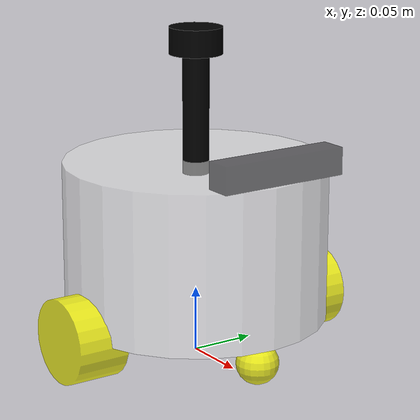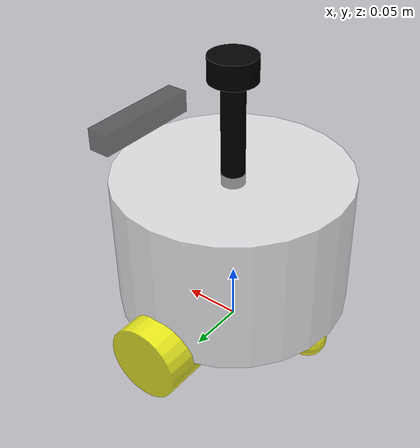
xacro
<?xml version="1.0"?>   <!-- xml格式声明-->
<!-- 注意xacro不能直接用，必须要先将xacro转换成urdf才能使用 可以使用命令xacro /home/adams/chapt6/chapt6_ws/src/fishbot_description/urdf/first_robot.xacro 来生成对应urdf文件-->
<robot xmlns:xacro="http://www.ros.org/wiki/xacro" name="fishbot">  <!--xmlns:xacro="http://www.ros.org/wiki/xacro" 是告诉大家这个urdf使用了宏语言了-->
<!-- 组装其他宏定义组件 -->
<!-- 基础部分，身体部分 base_link -->
<xacro:include filename="$(find fishbot_description)/urdf/fishbot/base.urdf.xacro"/>   <!--$(find fishbot_description)表示找到share目录下的fishbot_description(功能包的名字)目录-->
<!-- 传感器中的相机部分 -->
<xacro:include filename="$(find fishbot_description)/urdf/fishbot/sensor/camera.urdf.xacro"/>   <!--$(find fishbot_description)表示找到share目录下的fishbot_description(功能包的名字)目录-->
<!-- 传感器中的惯性测量单元部分 -->
<xacro:include filename="$(find fishbot_description)/urdf/fishbot/sensor/imu.urdf.xacro"/>   <!--$(find fishbot_description)表示找到share目录下的fishbot_description(功能包的名字)目录-->
<!-- 传感器中的雷达部分 -->
<xacro:include filename="$(find fishbot_description)/urdf/fishbot/sensor/laser.urdf.xacro"/>   <!--$(find fishbot_description)表示找到share目录下的fishbot_description(功能包的名字)目录-->
<!-- 执行器中的轮子 -->
<xacro:include filename="$(find fishbot_description)/urdf/fishbot/actuator/wheel.urdf.xacro"/>   <!--$(find fishbot_description)表示找到share目录下的fishbot_description(功能包的名字)目录-->
<!-- 执行器中的万向轮 -->
<xacro:include filename="$(find fishbot_description)/urdf/fishbot/actuator/caster.urdf.xacro"/>   <!--$(find fishbot_description)表示找到share目录下的fishbot_description(功能包的名字)目录-->

<!-- 插件 控制机器人运动插件-->
<xacro:include filename="$(find fishbot_description)/urdf/fishbot/plugins/gazebo_control_plugin.xacro"/>   <!--$(find fishbot_description)表示找到share目录下的fishbot_description(功能包的名字)目录-->
<!-- 插件 机器人的传感器插件-->
<xacro:include filename="$(find fishbot_description)/urdf/fishbot/plugins/gazebo_sensor_plugin.xacro"/>   <!--$(find fishbot_description)表示找到share目录下的fishbot_description(功能包的名字)目录-->

<!-- 调用宏 -->
<xacro:base_xacro length="0.12" radius="0.10"/>
<xacro:imu_xacro xyz="0.0 0.0 0.02"/>
<xacro:camera_xacro xyz="0.10 0.0 0.075"/>
<xacro:laser_xacro xyz="0.0 0.0 0.10"/>
<xacro:wheel_xacro wheel_name="left_wheel" xyz="0.0 0.10 -0.06"/>  <!--0.10 表示沿着Y轴偏移0.10 -0.06表示沿着Z轴向下偏移0.06-->
<xacro:wheel_xacro wheel_name="right_wheel" xyz="0.0 -0.10 -0.06"/> <!--  -0.10 表示沿着Y轴反方向偏移0.10 -0.06表示沿着Z轴向下偏移0.06-->
<!-- 万向轮部分 -->
<xacro:caster_xacro caster_name="front_caster" xyz="0.08 0.0 -0.076"/> <!--0.08 表示沿着X轴反方向偏移0.08 -0.076表示沿着Z轴向下偏移0.076-->
<xacro:caster_xacro caster_name="back_caster" xyz="-0.08 0.0 -0.076"/> <!--   -0.08 表示沿着X轴反方向偏移0.08 -0.076表示沿着Z轴向下偏移0.076-->

<!-- 使用插件 -->
<xacro:gazebo_control_plugin />
<xacro:gazebo_sensor_plugin />
</robot>

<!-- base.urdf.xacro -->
<!-- xml格式声明-->
<!-- 注意xacro不能直接用，必须要先将xacro转换成urdf才能使用 可以使用命令xacro /home/adams/chapt6/chapt6_ws/src/fishbot_description/urdf/first_robot.xacro 来生成对应urdf文件-->
<robot xmlns:xacro="http://www.ros.org/wiki/xacro">  <!--xmlns:xacro="http://www.ros.org/wiki/xacro" 是告诉大家这个urdf使用了宏语言了-->
    <!-- 引入描述质量和惯性的宏定义文件 -->
    <xacro:include filename="$(find fishbot_description)/urdf/fishbot/common_inertia.xacro"/>   <!--$(find fishbot_description)表示找到share目录下的fishbot_description(功能包的名字)目录-->

    <xacro:macro name="base_xacro" params="length radius">
        <!-- 定义base_link的虚拟部件，base_link相对于地面的投影，xy相同，z是base_link几何中心到地面的距离 -->
        <link name="base_footprint"/>

        <!--机器人身体部分-->
        <link name="base_link">  <!--子部件-->
            <!--  部件的外观描述 -->
            <visual>
                <!-- 沿着自己几何中心的偏移和旋转量 xyz表示偏移 rpy表示旋转(欧拉角表示)-->
                <origin xyz="0.0 0.0 0.0" rpy="0.0 0.0 0.0"/>
                <!-- 几何形状 -->
                <geometry>
                    <!-- 圆柱体 radius半径，length高度 单位是m-->
                    <cylinder radius="${radius}" length="${length}"/>
                </geometry>
                <!-- 材质颜色描述 -->
                <material name="white">
                    <!-- 颜色 红绿蓝和透明度，取值范围0.0-1.0   0.5表示半透明 -->
                    <color rgba="1.0 1.0 1.0 0.5"/>
                </material>
            </visual>
            <!-- 碰撞属性 -->
            <collision>
                <!-- 沿着自己几何中心的偏移和旋转量 xyz表示偏移 rpy表示旋转(欧拉角表示)-->
                <origin xyz="0.0 0.0 0.0" rpy="0.0 0.0 0.0"/>
                <!-- 几何形状 -->
                <geometry>
                    <!-- 圆柱体 radius半径，length高度 单位是m-->
                    <cylinder radius="${radius}" length="${length}"/>
                </geometry>
                <!-- 材质颜色描述 -->
                <material name="white">
                    <!-- 颜色 红绿蓝和透明度，取值范围0.0-1.0   0.5表示半透明 -->
                    <color rgba="1.0 1.0 1.0 0.5"/>
                </material>
            </collision>

            <!-- 设置base_link的质量和惯性 -->
            <xacro:cylinder_inertia m="1.0" r="${radius}" h="${length}"/>
        </link>

         <joint name="joint_name" type="fixed">
            <!--${length/2 + 0.032 - 0.001} 表示虚拟部件的位置，0.032表示左右轮子的半径  -->
            <origin xyz="0.0 0.0 ${length/2.0+0.032-0.001}" rpy="0.0 0.0 0.0"/>
            <parent link="base_footprint"/>
            <child link="base_link"/>
        </joint>
    </xacro:macro>

</robot>

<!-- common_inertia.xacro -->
<robot xmlns:xacro="http://ros.org/wiki/xacro">
    <!-- 定义描述各种形状部件的质量和惯性 宏定义 -->
    <xacro:macro name="box_inertia" params="m w h d">
        <inertial>
            <mass value="${m}" />
            <inertia ixx="${(m/12) * (h*h + d*d)}" ixy="0.0" ixz="0.0" iyy="${(m/12) * (w*w + d*d)}" iyz="0.0" izz="${(m/12) * (w*w + h*h)}" />
        </inertial>
    </xacro:macro>

    <xacro:macro name="cylinder_inertia" params="m r h">
        <inertial>
            <mass value="${m}" />
            <inertia ixx="${(m/12) * (3*r*r + h*h)}" ixy="0" ixz="0" iyy="${(m/12) * (3*r*r + h*h)}" iyz="0" izz="${(m/2) * (r*r)}" />
        </inertial>
    </xacro:macro>

    <xacro:macro name="sphere_inertia" params="m r">
        <inertial>
            <mass value="${m}" />
            <inertia ixx="${(2/5) * m * (r*r)}" ixy="0.0" ixz="0.0" iyy="${(2/5) * m * (r*r)}" iyz="0.0" izz="${(2/5) * m * (r*r)}" />
        </inertial>
    </xacro:macro>

</robot>

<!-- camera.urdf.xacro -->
<!-- xml格式声明-->
<!-- 注意xacro不能直接用，必须要先将xacro转换成urdf才能使用 可以使用命令xacro /home/adams/chapt6/chapt6_ws/src/fishbot_description/urdf/first_robot.xacro 来生成对应urdf文件-->
<robot xmlns:xacro="http://www.ros.org/wiki/xacro">  <!--xmlns:xacro="http://www.ros.org/wiki/xacro" 是告诉大家这个urdf使用了宏语言了-->
     <!-- 引入描述质量和惯性的宏定义文件 -->
    <xacro:include filename="$(find fishbot_description)/urdf/fishbot/common_inertia.xacro"/>   <!--$(find fishbot_description)表示找到share目录下的fishbot_description(功能包的名字)目录-->

    <xacro:macro name="camera_xacro" params="xyz">
        <link name="camera_link">  <!--子部件-->
            <!--  部件的外观描述 -->
            <visual>
                <!-- 沿着自己几何中心的偏移和旋转量 xyz表示偏移 rpy表示旋转(欧拉角表示)-->
                <origin xyz="0.0 0.0 0.0" rpy="0.0 0.0 0.0"/>
                <!-- 几何形状 -->
                <geometry>
                    <!-- 正方体 0.02表示2cm-->
                <box size="0.02 0.10 0.02"/>
                </geometry>
                <!-- 材质颜色描述 -->
                <material name="black">
                    <!-- 颜色 红绿蓝和透明度，取值范围0.0-1.0   0.5表示半透明 -->
                    <color rgba="0.0 0.0 0.0 0.5"/>
                </material>
            </visual>
            <!-- 碰撞属性 -->
            <collision>
                <!-- 沿着自己几何中心的偏移和旋转量 xyz表示偏移 rpy表示旋转(欧拉角表示)-->
                <origin xyz="0.0 0.0 0.0" rpy="0.0 0.0 0.0"/>
                <!-- 几何形状 -->
                <geometry>
                    <!-- 正方体 0.02表示2cm-->
                <box size="0.02 0.10 0.02"/>
                </geometry>
                <!-- 材质颜色描述 -->
                <material name="black">
                    <!-- 颜色 红绿蓝和透明度，取值范围0.0-1.0   0.5表示半透明 -->
                    <color rgba="0.0 0.0 0.0 0.5"/>
                </material>
            </collision>

            <!-- 设置质量和惯性 -->
            <xacro:box_inertia m="0.1" w="0.02" h="0.10" d="0.02" />
        </link>

        <!-- 机器人的关节，用于组合机器人的部件，此处将camera_link和base_link进行组合 -->
        <joint name="camera_jonit" type="fixed">  <!--fixed表示固定死的-->
            <!-- 目前的意思表示将camera_link固定在base_link上面 -->
            <parent link="base_link"/> <!--父部件-->
            <child link="camera_link"/> <!--子部件-->
            <!-- 固定的位置，偏移和旋转 -->
            <origin xyz="${xyz}" rpy="0.0 0.0 0.0"/>
        </joint>
    </xacro:macro>
</robot>

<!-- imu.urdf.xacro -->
<!-- xml格式声明-->
<!-- 传感器xacro的定义 -->
<!-- 注意xacro不能直接用，必须要先将xacro转换成urdf才能使用 可以使用命令xacro /home/adams/chapt6/chapt6_ws/src/fishbot_description/urdf/first_robot.xacro 来生成对应urdf文件-->
<robot xmlns:xacro="http://www.ros.org/wiki/xacro">  <!--xmlns:xacro="http://www.ros.org/wiki/xacro" 是告诉大家这个urdf使用了宏语言了-->
    <!-- 引入描述质量和惯性的宏定义文件 -->
    <xacro:include filename="$(find fishbot_description)/urdf/fishbot/common_inertia.xacro"/>   <!--$(find fishbot_description)表示找到share目录下的fishbot_description(功能包的名字)目录-->

    <xacro:macro name="imu_xacro" params="xyz">
        <!-- 机器人的IMU部件，惯性测量单元传感器 -->
        <link name="imu_link">  <!--子部件-->
            <!--  部件的外观描述 -->
            <visual>
                <!-- 沿着自己几何中心的偏移和旋转量 xyz表示偏移 rpy表示旋转(欧拉角表示)-->
                <origin xyz="0.0 0.0 0.0" rpy="0.0 0.0 0.0"/>
                <!-- 几何形状 -->
                <geometry>
                    <!-- 正方体 0.02表示2cm-->
                <box size="0.02 0.02 0.02"/>
                </geometry>
                <!-- 材质颜色描述 -->
                <material name="black">
                    <!-- 颜色 红绿蓝和透明度，取值范围0.0-1.0   0.5表示半透明 -->
                    <color rgba="0.0 0.0 0.0 0.5"/>
                </material>
            </visual>
            <!-- 碰撞属性 -->
            <collision>
                <!-- 沿着自己几何中心的偏移和旋转量 xyz表示偏移 rpy表示旋转(欧拉角表示)-->
                <origin xyz="0.0 0.0 0.0" rpy="0.0 0.0 0.0"/>
                <!-- 几何形状 -->
                <geometry>
                    <!-- 正方体 0.02表示2cm-->
                <box size="0.02 0.02 0.02"/>
                </geometry>
                <!-- 材质颜色描述 -->
                <material name="black">
                    <!-- 颜色 红绿蓝和透明度，取值范围0.0-1.0   0.5表示半透明 -->
                    <color rgba="0.0 0.0 0.0 0.5"/>
                </material>
            </collision>

            <!-- 设置质量和惯性 -->
            <xacro:box_inertia m="0.05" w="0.02" h="0.02" d="0.02" />
        </link>

        <!-- 机器人的关节，用于组合机器人的部件，此处将imu_link和base_link进行组合 -->
        <joint name="imu_jonit" type="fixed">  <!--fixed表示固定死的-->
            <!-- 目前的意思表示将imu_link固定在base_link上面 -->
            <parent link="base_link"/> <!--父部件-->
            <child link="imu_link"/> <!--子部件-->
            <!-- 固定的位置，偏移和旋转    0.03表示将imu_link固定在base_link几何中心向上3cm的地方-->
            <origin xyz="${xyz}" rpy="0.0 0.0 0.0"/>
        </joint>
    </xacro:macro>
</robot>

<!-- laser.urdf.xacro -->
<!-- xml格式声明-->
<!-- 注意xacro不能直接用，必须要先将xacro转换成urdf才能使用 可以使用命令xacro /home/adams/chapt6/chapt6_ws/src/fishbot_description/urdf/first_robot.xacro 来生成对应urdf文件-->
<robot xmlns:xacro="http://www.ros.org/wiki/xacro">  <!--xmlns:xacro="http://www.ros.org/wiki/xacro" 是告诉大家这个urdf使用了宏语言了-->
     <!-- 引入描述质量和惯性的宏定义文件 -->
    <xacro:include filename="$(find fishbot_description)/urdf/fishbot/common_inertia.xacro"/>   <!--$(find fishbot_description)表示找到share目录下的fishbot_description(功能包的名字)目录-->

    <xacro:macro name="laser_xacro" params="xyz">
        <gazebo reference="laser_cylinder_link">  <!--reference表示参考的部件的名称-->
            <material>Gazebo/Black</material>  <!--设置部件的材质颜色-->
        </gazebo>
        <gazebo reference="laser_link">
            <material>Gazebo/Black</material>
        </gazebo>

        <!-- 雷达支撑杆 -->
        <link name="laser_cylinder_link">  <!--子部件-->
            <!--  部件的外观描述 -->
            <visual>
                <!-- 沿着自己几何中心的偏移和旋转量 xyz表示偏移 rpy表示旋转(欧拉角表示)-->
                <origin xyz="0.0 0.0 0.0" rpy="0.0 0.0 0.0"/>
                <!-- 几何形状 -->
                <geometry>
                    <!-- 圆柱体 radius半径，length高度 单位是m-->
                    <cylinder radius="0.01" length="0.10"/>
                </geometry>
                <!-- 材质颜色描述 -->
                <material name="black">
                    <!-- 颜色 红绿蓝和透明度，取值范围0.0-1.0   1.0表示不透明 -->
                    <color rgba="0.0 0.0 0.0 1.0"/>
                </material>
            </visual>
            <!-- 碰撞属性 -->
            <collision>
                <!-- 沿着自己几何中心的偏移和旋转量 xyz表示偏移 rpy表示旋转(欧拉角表示)-->
                <origin xyz="0.0 0.0 0.0" rpy="0.0 0.0 0.0"/>
                <!-- 几何形状 -->
                <geometry>
                    <!-- 圆柱体 radius半径，length高度 单位是m-->
                    <cylinder radius="0.01" length="0.10"/>
                </geometry>
                <!-- 材质颜色描述 -->
                <material name="black">
                    <!-- 颜色 红绿蓝和透明度，取值范围0.0-1.0   1.0表示不透明 -->
                    <color rgba="0.0 0.0 0.0 1.0"/>
                </material>
            </collision>

            <!-- 设置质量和惯性 -->
            <xacro:cylinder_inertia m="0.05" r="0.01" h="0.10"/>
        </link>

        <!-- 雷达 -->
        <link name="laser_link">  <!--子部件-->
            <!--  部件的外观描述 -->
            <visual>
                <!-- 沿着自己几何中心的偏移和旋转量 xyz表示偏移 rpy表示旋转(欧拉角表示)-->
                <origin xyz="0.0 0.0 0.0" rpy="0.0 0.0 0.0"/>
                <!-- 几何形状 -->
                <geometry>
                    <!-- 圆柱体 radius半径，length高度 单位是m-->
                    <cylinder radius="0.02" length="0.02"/>
                </geometry>
                <!-- 材质颜色描述 -->
                <material name="black">
                    <!-- 颜色 红绿蓝和透明度，取值范围0.0-1.0   1.0表示不透明 -->
                    <color rgba="0.0 0.0 0.0 1.0"/>
                </material>
            </visual>
            <!-- 碰撞属性 -->
            <collision>
             <!-- 沿着自己几何中心的偏移和旋转量 xyz表示偏移 rpy表示旋转(欧拉角表示)-->
                <origin xyz="0.0 0.0 0.0" rpy="0.0 0.0 0.0"/>
                <!-- 几何形状 -->
                <geometry>
                    <!-- 圆柱体 radius半径，length高度 单位是m-->
                    <cylinder radius="0.02" length="0.02"/>
                </geometry>
                <!-- 材质颜色描述 -->
                <material name="black">
                    <!-- 颜色 红绿蓝和透明度，取值范围0.0-1.0   1.0表示不透明 -->
                    <color rgba="0.0 0.0 0.0 1.0"/>
                </material>
            </collision>

            <!-- 设置质量和惯性 -->
            <xacro:cylinder_inertia m="0.10" r="0.02" h="0.02"/>
        </link>

        <!-- 机器人的关节，用于组合机器人的部件 -->
        <joint name="laser_jonit" type="fixed">  <!--fixed表示固定死的-->
            <!-- 目前的意思表示将laser_link固定在laser_cylinder_link上面 将雷达固定到了雷达支撑杆上-->
            <parent link="laser_cylinder_link"/> <!--父部件-->
            <child link="laser_link"/> <!--子部件-->
            <!-- 固定的位置，偏移和旋转 -->
            <origin xyz="0.0 0.0 0.05" rpy="0.0 0.0 0.0"/>
        </joint>

        <!-- 机器人的关节，用于组合机器人的部件 -->
        <joint name="laser_cylinder_jonit" type="fixed">  <!--fixed表示固定死的-->
            <!-- 目前的意思表示将laser_cylinder_link固定在base_link上面 将雷达支撑杆固定到base_link上-->
            <parent link="base_link"/> <!--父部件-->
            <child link="laser_cylinder_link"/> <!--子部件-->
            <!-- 固定的位置，偏移和旋转 -->
            <origin xyz="${xyz}" rpy="0.0 0.0 0.0"/>
        </joint>

    </xacro:macro>
</robot>

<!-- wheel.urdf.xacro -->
<!-- xml格式声明-->
<!-- 传感器xacro的定义 -->
<!-- 注意xacro不能直接用，必须要先将xacro转换成urdf才能使用 可以使用命令xacro /home/adams/chapt6/chapt6_ws/src/fishbot_description/urdf/first_robot.xacro 来生成对应urdf文件-->
<robot xmlns:xacro="http://www.ros.org/wiki/xacro">  <!--xmlns:xacro="http://www.ros.org/wiki/xacro" 是告诉大家这个urdf使用了宏语言了-->
     <!-- 引入描述质量和惯性的宏定义文件 -->
    <xacro:include filename="$(find fishbot_description)/urdf/fishbot/common_inertia.xacro"/>   <!--$(find fishbot_description)表示找到share目录下的fishbot_description(功能包的名字)目录-->

    <!-- 轮子部件 -->
    <xacro:macro name="wheel_xacro" params="wheel_name xyz">
        <gazebo reference="${wheel_name}_link">  <!--reference表示参考的部件的名称-->
            <!-- 摩擦系数 切向的，默认值是1.0 -->
            <mu1 value="20.0" />
            <!-- 摩擦系数 法向的，默认值是1.0 -->
            <mu2 value="20.0" />
            <!-- 接触的刚度系数 -->
            <kp value="1000000000.0" />
            <!-- 阻尼系数 默认值是1.0 -->
            <kd value="1.0"/>
        </gazebo>

        <link name="${wheel_name}_link">  <!--子部件-->
            <!--  部件的外观描述 -->
            <visual>
                <!-- 沿着自己几何中心的偏移和旋转量 xyz表示偏移 rpy表示旋转(欧拉角表示)-->
                <origin xyz="0.0 0.0 0.0" rpy="1.57079 0.0 0.0"/>  <!--1/2PI 表示翻滚90度-->
                <!-- 几何形状 -->
                <geometry>
                    <!-- 圆柱型 -->
                    <cylinder radius="0.032" length="0.04"/>
                </geometry>
                <!-- 材质颜色描述 -->
                <material name="yellow">
                    <!-- 颜色 红绿蓝和透明度，取值范围0.0-1.0 -->
                    <color rgba="1.0 1.0 0.0 0.8"/>
                </material>
            </visual>
            <!-- 碰撞属性 -->
            <collision>
                <!-- 沿着自己几何中心的偏移和旋转量 xyz表示偏移 rpy表示旋转(欧拉角表示)-->
                <origin xyz="0.0 0.0 0.0" rpy="1.57079 0.0 0.0"/>  <!--1/2PI 表示翻滚90度-->
                <!-- 几何形状 -->
                <geometry>
                    <!-- 圆柱型 -->
                    <cylinder radius="0.032" length="0.04"/>
                </geometry>
                <!-- 材质颜色描述 -->
                <material name="yellow">
                    <!-- 颜色 红绿蓝和透明度，取值范围0.0-1.0 -->
                    <color rgba="1.0 1.0 0.0 0.8"/>
                </material>
            </collision>

            <!-- 设置质量和惯性 -->
            <xacro:cylinder_inertia m="0.05" r="0.032" h="0.04"/>
        </link>

        <!-- 机器人的关节，用于组合机器人的部件 -->
        <joint name="${wheel_name}_joint" type="continuous">  <!--轮子可以转动，类型需要使用continuous-->
            <!-- 目前的意思表示将imu_link固定在base_link上面 -->
            <parent link="base_link"/> <!--父部件-->
            <child link="${wheel_name}_link"/> <!--子部件-->
            <!-- 固定的位置，偏移和旋转    0.03表示将imu_link固定在base_link几何中心向上3cm的地方-->
            <origin xyz="${xyz}" rpy="0.0 0.0 0.0"/>
            <axis xyz="0 1 0"/>  <!--0 1 0表示配置轮子绕Y轴旋转， 如果是1 0 0表示配置轮子绕X轴旋转-->
        </joint>
    </xacro:macro>
</robot>

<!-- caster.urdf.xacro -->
<!-- xml格式声明-->
<!-- 传感器xacro的定义 -->
<!-- 注意xacro不能直接用，必须要先将xacro转换成urdf才能使用 可以使用命令xacro /home/adams/chapt6/chapt6_ws/src/fishbot_description/urdf/first_robot.xacro 来生成对应urdf文件-->
<robot xmlns:xacro="http://www.ros.org/wiki/xacro">  <!--xmlns:xacro="http://www.ros.org/wiki/xacro" 是告诉大家这个urdf使用了宏语言了-->
     <!-- 引入描述质量和惯性的宏定义文件 -->
    <xacro:include filename="$(find fishbot_description)/urdf/fishbot/common_inertia.xacro"/>   <!--$(find fishbot_description)表示找到share目录下的fishbot_description(功能包的名字)目录-->

    <!-- 轮子部件  万向轮-->
    <xacro:macro name="caster_xacro" params="caster_name xyz">
        <gazebo reference="${caster_name}_link">  <!--reference表示参考的部件的名称-->
            <!-- 摩擦系数 切向的，默认值是1.0 -->
            <mu1 value="0" />
            <!-- 摩擦系数 法向的，默认值是1.0 -->
            <mu2 value="0" />
            <!-- 接触的刚度系数 -->
            <kp value="1000000000.0" />
            <!-- 阻尼系数 默认值是1.0 -->
            <kd value="1.0"/>
        </gazebo>

        <link name="${caster_name}_link">  <!--子部件-->
            <!--  部件的外观描述 -->
            <visual>
                <!-- 沿着自己几何中心的偏移和旋转量 xyz表示偏移 rpy表示旋转(欧拉角表示)-->
                <origin xyz="0.0 0.0 0.0" rpy="0.0 0.0 0.0"/>
                <!-- 几何形状 -->
                <geometry>
                    <!-- 圆形 -->
                    <sphere radius="0.016"/>
                </geometry>
                <!-- 材质颜色描述 -->
                <material name="yellow">
                    <!-- 颜色 红绿蓝和透明度，取值范围0.0-1.0 -->
                    <color rgba="1.0 1.0 0.0 0.8"/>
                </material>
            </visual>
            <!-- 碰撞属性 -->
            <collision>
                 <!-- 沿着自己几何中心的偏移和旋转量 xyz表示偏移 rpy表示旋转(欧拉角表示)-->
                <origin xyz="0.0 0.0 0.0" rpy="0.0 0.0 0.0"/>
                <!-- 几何形状 -->
                <geometry>
                    <!-- 圆形 -->
                    <sphere radius="0.016"/>
                </geometry>
                <!-- 材质颜色描述 -->
                <material name="yellow">
                    <!-- 颜色 红绿蓝和透明度，取值范围0.0-1.0 -->
                    <color rgba="1.0 1.0 0.0 0.8"/>
                </material>
            </collision>

            <!-- 设置质量和惯性 -->
            <xacro:sphere_inertia m="0.05" r="0.016"/>
        </link>

        <!-- 机器人的关节，用于组合机器人的部件 -->
        <joint name="${caster_name}_jonit" type="fixed">  <!--轮子可以转动，类型需要使用fixed-->
            <!-- 目前的意思表示将imu_link固定在base_link上面 -->
            <parent link="base_link"/> <!--父部件-->
            <child link="${caster_name}_link"/> <!--子部件-->
            <!-- 固定的位置，偏移和旋转    0.03表示将imu_link固定在base_link几何中心向上3cm的地方-->
            <origin xyz="${xyz}" rpy="0.0 0.0 0.0"/>
        </joint>
    </xacro:macro>
</robot>
